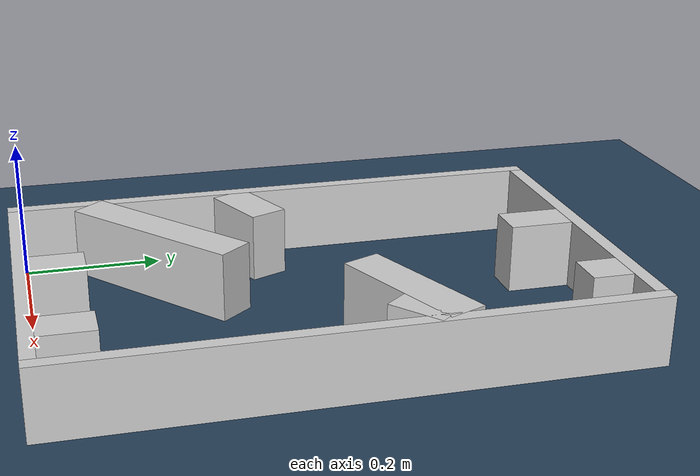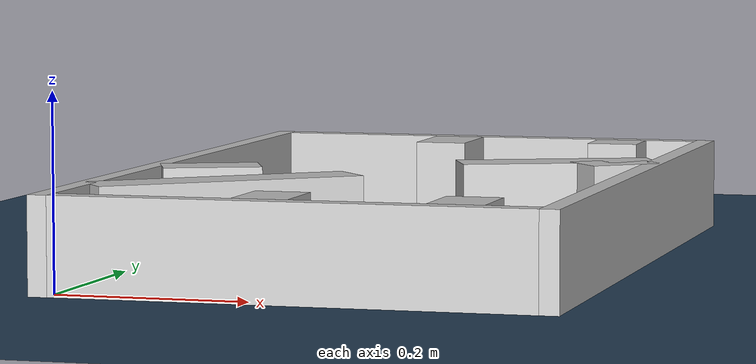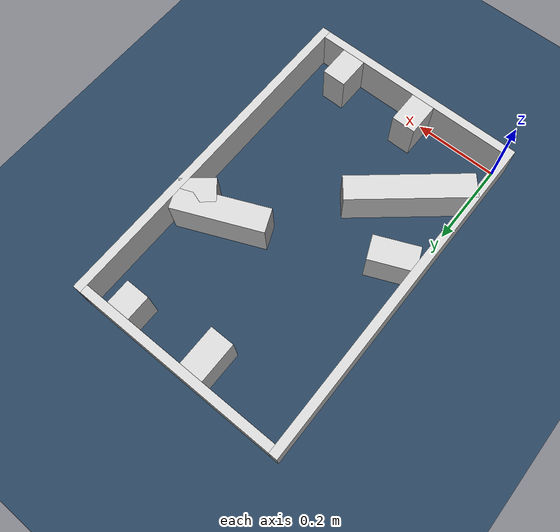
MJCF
<?xml version="1.0" ?>
<mujoco model="generated_real_template">
  <compiler angle="degree"/>
  <option timestep="0.002" integrator="implicitfast" iterations="100" cone="elliptic"/>
  <default>
    <geom density="1"/>
  </default>
  <asset>
    <texture builtin="gradient" height="3072" rgb1="0.3 0.5 0.7" rgb2="0 0 0" type="skybox" width="512"/>
    <texture builtin="checker" height="300" mark="edge" markrgb="0.8 0.8 0.8" name="groundplane" rgb1="0.2 0.3 0.4" rgb2="0.1 0.2 0.3" type="2d" width="300"/>
    <material name="groundplane" reflectance="0.2" texrepeat="5 5" texture="groundplane" texuniform="true"/>
  </asset>
  <worldbody>
    <light dir="0 0 -1" directional="true" pos="0 0 1.5"/>
    <geom name="floor" type="plane" condim="4" friction="0.5 0.005 0.001" material="groundplane" size="0 0 0.05"/>
    <body name="walls">
      <geom name="wall_boundary_left" type="box" condim="4" friction="1.0 0.005 0.0001" rgba="0.8 0.8 0.8 1" pos="-0.010000 0.387500 0.050000" euler="0 0 0.000000" size="0.010000 0.407500 0.050000"/>
      <geom name="wall_boundary_right" type="box" condim="4" friction="1.0 0.005 0.0001" rgba="0.8 0.8 0.8 1" pos="0.500000 0.387500 0.050000" euler="0 0 0.000000" size="0.010000 0.407500 0.050000"/>
      <geom name="wall_boundary_bottom" type="box" condim="4" friction="1.0 0.005 0.0001" rgba="0.8 0.8 0.8 1" pos="0.245000 -0.010000 0.050000" euler="0 0 0.000000" size="0.245000 0.010000 0.050000"/>
      <geom name="wall_boundary_top" type="box" condim="4" friction="1.0 0.005 0.0001" rgba="0.8 0.8 0.8 1" pos="0.245000 0.785000 0.050000" euler="0 0 0.000000" size="0.245000 0.010000 0.050000"/>
      <geom name="wall_inner_1_1" type="box" condim="4" friction="1.0 0.005 0.0001" rgba="0.8 0.8 0.8 1" pos="0.048355 0.334157 0.050000" euler="0 0 23.136174" size="0.052584 0.028500 0.050000"/>
      <geom name="wall_inner_1_2" type="box" condim="4" friction="1.0 0.005 0.0001" rgba="0.8 0.8 0.8 1" pos="0.392635 0.481262 0.050000" euler="0 0 23.136174" size="0.105881 0.028500 0.050000"/>
      <geom name="wall_inner_2_1" type="box" condim="4" friction="1.0 0.005 0.0001" rgba="0.8 0.8 0.8 1" pos="0.209999 0.038567 0.050000" euler="0 0 90.000000" size="0.038567 0.028500 0.050000"/>
      <geom name="wall_inner_2_2" type="box" condim="4" friction="1.0 0.005 0.0001" rgba="0.8 0.8 0.8 1" pos="0.209999 0.728961 0.050000" euler="0 0 90.000000" size="0.046039 0.028500 0.050000"/>
      <geom name="wall_inner_3_1" type="box" condim="4" friction="1.0 0.005 0.0001" rgba="0.8 0.8 0.8 1" pos="0.110532 0.190239 0.050000" euler="0 0 39.734659" size="0.143732 0.028500 0.050000"/>
      <geom name="wall_inner_3_2" type="box" condim="4" friction="1.0 0.005 0.0001" rgba="0.8 0.8 0.8 1" pos="0.458553 0.479528 0.050000" euler="0 0 39.734659" size="0.040892 0.028500 0.050000"/>
      <geom name="wall_inner_4_1" type="box" condim="4" friction="1.0 0.005 0.0001" rgba="0.8 0.8 0.8 1" pos="0.404747 0.037986 0.050000" euler="0 0 90.000000" size="0.037986 0.028500 0.050000"/>
      <geom name="wall_inner_4_2" type="box" condim="4" friction="1.0 0.005 0.0001" rgba="0.8 0.8 0.8 1" pos="0.404747 0.746016 0.050000" euler="0 0 90.000000" size="0.028984 0.028500 0.050000"/>
    </body>
  </worldbody>
</mujoco>
